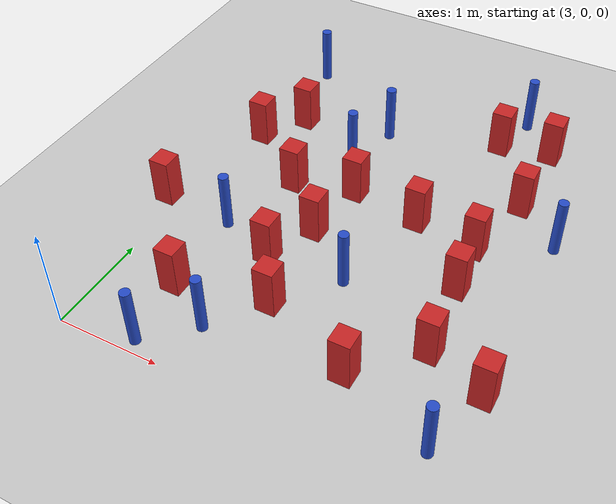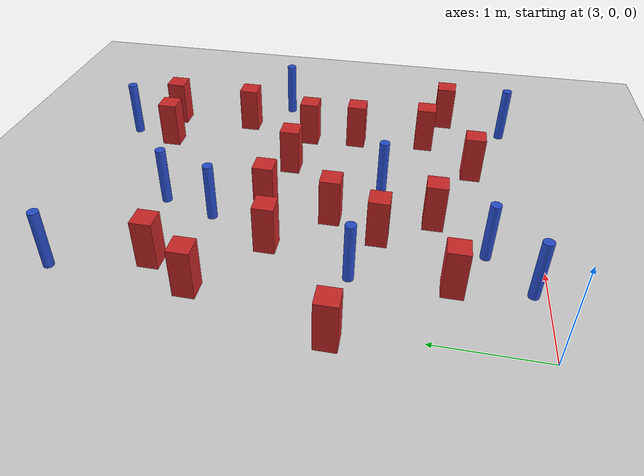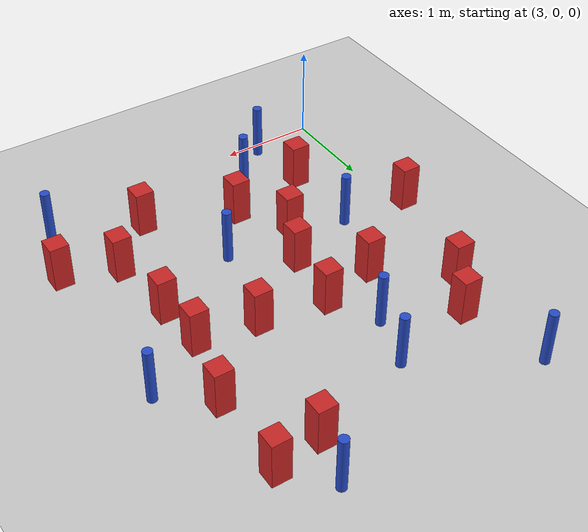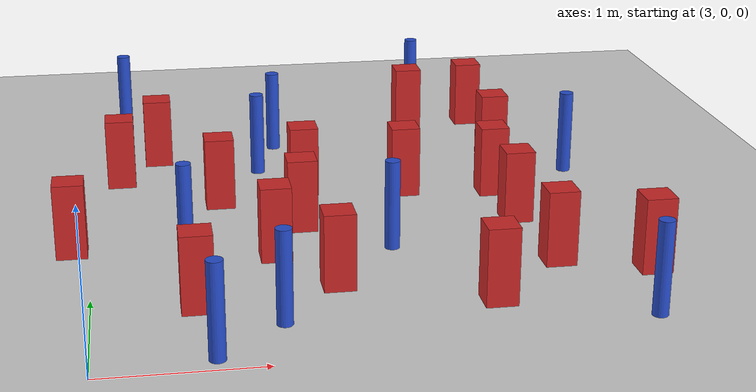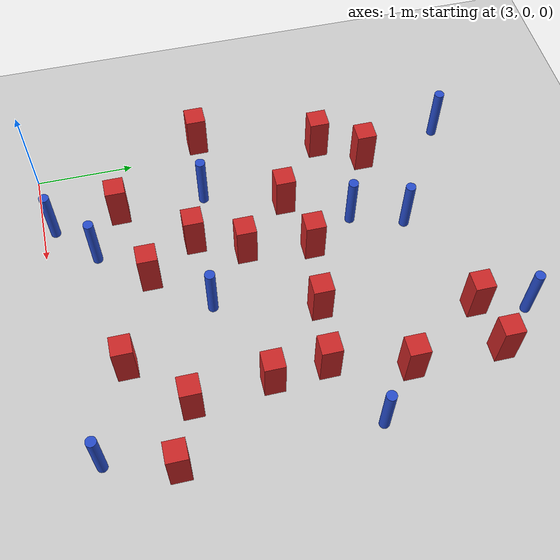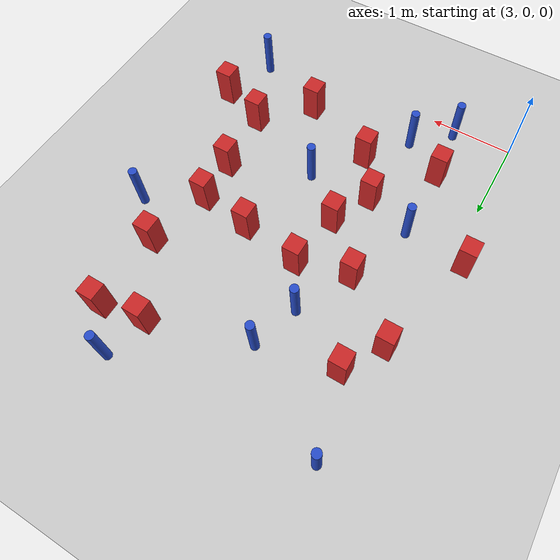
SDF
<sdf version="1.6">
 <world name="default">
  <model name="ground_plane">
   <static>1</static>
   <link name="link">
    <collision name="collision">
     <geometry><plane><normal>0 0 1</normal><size>100 100</size></plane></geometry>
     <surface><friction><ode><mu>100</mu><mu2>50</mu2></ode></friction></surface>
    </collision>
    <visual name="visual">
     <cast_shadows>0</cast_shadows>
     <geometry><plane><normal>0 0 1</normal><size>100 100</size></plane></geometry>
     <material>
      <ambient>1.0 1.0 1.0 1.0</ambient>
      <diffuse>0.8 0.8 0.8 1.0</diffuse>
      <specular>0.01 0.01 0.01 1.000000</specular>
     </material>
    </visual>
   </link>
  </model>
  <model name="pole_obstacle0">
   <static>true</static>
   <pose>3.60466851561 1.68815244617 -3.09024884793e-07 -7.19054271912e-07 -2.11315075122e-07 -1.93935509259e-07</pose>
   <link name="link">
    <pose>0 0 0.3 0 -0 0</pose>
    <inertial>
     <mass>1</mass>
     <inertia><ixx>0.145833</ixx><ixy>0</ixy><ixz>0</ixz><iyy>0.145833</iyy><iyz>0</iyz><izz>0.125</izz></inertia>
    </inertial>
    <collision name="collision">
     <geometry><cylinder><radius>0.05</radius><length>.6</length></cylinder></geometry>
    </collision>
    <visual name="visual">
     <geometry><cylinder><radius>0.05</radius><length>.6</length></cylinder></geometry>
     <material>
      <script><name>Gazebo/Blue</name><uri>file://media/materials/scripts/gazebo.material</uri></script>
     </material>
    </visual>
   </link>
  </model>
  <model name="square_post_obstacle3">
   <static>true</static>
   <pose>3.87906195297 2.48973368131 -4.36207812815e-07 3.75137919937e-06 9.77721102514e-07 2.47381364184e-05</pose>
   <link name="link">
    <pose>0 0 0.25 0 -0 0</pose>
    <inertial>
     <mass>100</mass>
     <inertia>
      <ixx>0.166667</ixx>
      <ixy>0</ixy>
      <ixz>0</ixz>
      <iyy>0.166667</iyy>
      <iyz>0</iyz>
      <izz>0.166667</izz>
     </inertia>
    </inertial>
    <collision name="collision"><geometry><box><size>.2 .2 .5</size></box></geometry></collision>
    <visual name="visual">
     <geometry><box><size>.2 .2 .5</size></box></geometry>
     <material>
      <script><name>Gazebo/Red</name><uri>file://media/materials/scripts/gazebo.material</uri></script>
     </material>
    </visual>
   </link>
  </model>
  <model name="square_post_obstacle4">
   <static>true</static>
   <pose>5.19409219351 2.53887665867 -4.36207812815e-07 3.75137919937e-06 9.77721102514e-07 2.47381364184e-05</pose>
   <link name="link">
    <pose>0 0 0.25 0 -0 0</pose>
    <inertial>
     <mass>100</mass>
     <inertia>
      <ixx>0.166667</ixx>
      <ixy>0</ixy>
      <ixz>0</ixz>
      <iyy>0.166667</iyy>
      <iyz>0</iyz>
      <izz>0.166667</izz>
     </inertia>
    </inertial>
    <collision name="collision"><geometry><box><size>.2 .2 .5</size></box></geometry></collision>
    <visual name="visual">
     <geometry><box><size>.2 .2 .5</size></box></geometry>
     <material>
      <script><name>Gazebo/Red</name><uri>file://media/materials/scripts/gazebo.material</uri></script>
     </material>
    </visual>
   </link>
  </model>
  <model name="square_post_obstacle12">
   <static>true</static>
   <pose>5.85844302051 1.91838656615 -4.36207812815e-07 3.75137919937e-06 9.77721102514e-07 2.47381364184e-05</pose>
   <link name="link">
    <pose>0 0 0.25 0 -0 0</pose>
    <inertial>
     <mass>100</mass>
     <inertia>
      <ixx>0.166667</ixx>
      <ixy>0</ixy>
      <ixz>0</ixz>
      <iyy>0.166667</iyy>
      <iyz>0</iyz>
      <izz>0.166667</izz>
     </inertia>
    </inertial>
    <collision name="collision"><geometry><box><size>.2 .2 .5</size></box></geometry></collision>
    <visual name="visual">
     <geometry><box><size>.2 .2 .5</size></box></geometry>
     <material>
      <script><name>Gazebo/Red</name><uri>file://media/materials/scripts/gazebo.material</uri></script>
     </material>
    </visual>
   </link>
  </model>
  <model name="pole_obstacle22">
   <static>true</static>
   <pose>5.62345927579 4.4928146941 -3.09024884793e-07 -7.19054271911e-07 -2.1131507516e-07 -1.93935509277e-07</pose>
   <link name="link">
    <pose>0 0 0.3 0 -0 0</pose>
    <inertial>
     <mass>1</mass>
     <inertia><ixx>0.145833</ixx><ixy>0</ixy><ixz>0</ixz><iyy>0.145833</iyy><iyz>0</iyz><izz>0.125</izz></inertia>
    </inertial>
    <collision name="collision">
     <geometry><cylinder><radius>0.05</radius><length>.6</length></cylinder></geometry>
    </collision>
    <visual name="visual">
     <geometry><cylinder><radius>0.05</radius><length>.6</length></cylinder></geometry>
     <material>
      <script><name>Gazebo/Blue</name><uri>file://media/materials/scripts/gazebo.material</uri></script>
     </material>
    </visual>
   </link>
  </model>
  <model name="pole_obstacle34">
   <static>true</static>
   <pose>4.11600173302 0.507920673641 -3.09024884793e-07 -7.19054271912e-07 -2.11315075121e-07 -1.93935509259e-07</pose>
   <link name="link">
    <pose>0 0 0.3 0 -0 0</pose>
    <inertial>
     <mass>1</mass>
     <inertia><ixx>0.145833</ixx><ixy>0</ixy><ixz>0</ixz><iyy>0.145833</iyy><iyz>0</iyz><izz>0.125</izz></inertia>
    </inertial>
    <collision name="collision">
     <geometry><cylinder><radius>0.05</radius><length>.6</length></cylinder></geometry>
    </collision>
    <visual name="visual">
     <geometry><cylinder><radius>0.05</radius><length>.6</length></cylinder></geometry>
     <material>
      <script><name>Gazebo/Blue</name><uri>file://media/materials/scripts/gazebo.material</uri></script>
     </material>
    </visual>
   </link>
  </model>
  <model name="pole_obstacle35">
   <static>true</static>
   <pose>6.30162977022 0.28714621884 -3.09024884793e-07 -7.19054271912e-07 -2.11315075135e-07 -1.93935509265e-07</pose>
   <link name="link">
    <pose>0 0 0.3 0 -0 0</pose>
    <inertial>
     <mass>1</mass>
     <inertia><ixx>0.145833</ixx><ixy>0</ixy><ixz>0</ixz><iyy>0.145833</iyy><iyz>0</iyz><izz>0.125</izz></inertia>
    </inertial>
    <collision name="collision">
     <geometry><cylinder><radius>0.05</radius><length>.6</length></cylinder></geometry>
    </collision>
    <visual name="visual">
     <geometry><cylinder><radius>0.05</radius><length>.6</length></cylinder></geometry>
     <material>
      <script><name>Gazebo/Blue</name><uri>file://media/materials/scripts/gazebo.material</uri></script>
     </material>
    </visual>
   </link>
  </model>
  <model name="square_post_obstacle43">
   <static>true</static>
   <pose>6.00257894294 4.09511672997 -4.36207812815e-07 3.75137919937e-06 9.77721102514e-07 2.47381364184e-05</pose>
   <link name="link">
    <pose>0 0 0.25 0 -0 0</pose>
    <inertial>
     <mass>100</mass>
     <inertia>
      <ixx>0.166667</ixx>
      <ixy>0</ixy>
      <ixz>0</ixz>
      <iyy>0.166667</iyy>
      <iyz>0</iyz>
      <izz>0.166667</izz>
     </inertia>
    </inertial>
    <collision name="collision"><geometry><box><size>.2 .2 .5</size></box></geometry></collision>
    <visual name="visual">
     <geometry><box><size>.2 .2 .5</size></box></geometry>
     <material>
      <script><name>Gazebo/Red</name><uri>file://media/materials/scripts/gazebo.material</uri></script>
     </material>
    </visual>
   </link>
  </model>
  <model name="square_post_obstacle63">
   <static>true</static>
   <pose>5.93387154902 1.15310117434 -4.36207812815e-07 3.75137919937e-06 9.77721102514e-07 2.47381364184e-05</pose>
   <link name="link">
    <pose>0 0 0.25 0 -0 0</pose>
    <inertial>
     <mass>100</mass>
     <inertia>
      <ixx>0.166667</ixx>
      <ixy>0</ixy>
      <ixz>0</ixz>
      <iyy>0.166667</iyy>
      <iyz>0</iyz>
      <izz>0.166667</izz>
     </inertia>
    </inertial>
    <collision name="collision"><geometry><box><size>.2 .2 .5</size></box></geometry></collision>
    <visual name="visual">
     <geometry><box><size>.2 .2 .5</size></box></geometry>
     <material>
      <script><name>Gazebo/Red</name><uri>file://media/materials/scripts/gazebo.material</uri></script>
     </material>
    </visual>
   </link>
  </model>
  <model name="pole_obstacle86">
   <static>true</static>
   <pose>6.46464674473 2.80618691276 -3.09024884793e-07 -7.19054271912e-07 -2.11315075144e-07 -1.93935509269e-07</pose>
   <link name="link">
    <pose>0 0 0.3 0 -0 0</pose>
    <inertial>
     <mass>1</mass>
     <inertia><ixx>0.145833</ixx><ixy>0</ixy><ixz>0</ixz><iyy>0.145833</iyy><iyz>0</iyz><izz>0.125</izz></inertia>
    </inertial>
    <collision name="collision">
     <geometry><cylinder><radius>0.05</radius><length>.6</length></cylinder></geometry>
    </collision>
    <visual name="visual">
     <geometry><cylinder><radius>0.05</radius><length>.6</length></cylinder></geometry>
     <material>
      <script><name>Gazebo/Blue</name><uri>file://media/materials/scripts/gazebo.material</uri></script>
     </material>
    </visual>
   </link>
  </model>
  <model name="square_post_obstacle74">
   <static>true</static>
   <pose>4.16488872355 1.49642930319 -4.36207812815e-07 3.75137919937e-06 9.77721102514e-07 2.47381364184e-05</pose>
   <link name="link">
    <pose>0 0 0.25 0 -0 0</pose>
    <inertial>
     <mass>100</mass>
     <inertia>
      <ixx>0.166667</ixx>
      <ixy>0</ixy>
      <ixz>0</ixz>
      <iyy>0.166667</iyy>
      <iyz>0</iyz>
      <izz>0.166667</izz>
     </inertia>
    </inertial>
    <collision name="collision"><geometry><box><size>.2 .2 .5</size></box></geometry></collision>
    <visual name="visual">
     <geometry><box><size>.2 .2 .5</size></box></geometry>
     <material>
      <script><name>Gazebo/Red</name><uri>file://media/materials/scripts/gazebo.material</uri></script>
     </material>
    </visual>
   </link>
  </model>
  <model name="square_post_obstacle75">
   <static>true</static>
   <pose>2.87497273468 1.75253294961 -4.36207812815e-07 3.75137919937e-06 9.77721102514e-07 2.47381364184e-05</pose>
   <link name="link">
    <pose>0 0 0.25 0 -0 0</pose>
    <inertial>
     <mass>100</mass>
     <inertia>
      <ixx>0.166667</ixx>
      <ixy>0</ixy>
      <ixz>0</ixz>
      <iyy>0.166667</iyy>
      <iyz>0</iyz>
      <izz>0.166667</izz>
     </inertia>
    </inertial>
    <collision name="collision"><geometry><box><size>.2 .2 .5</size></box></geometry></collision>
    <visual name="visual">
     <geometry><box><size>.2 .2 .5</size></box></geometry>
     <material>
      <script><name>Gazebo/Red</name><uri>file://media/materials/scripts/gazebo.material</uri></script>
     </material>
    </visual>
   </link>
  </model>
  <model name="square_post_obstacle89">
   <static>true</static>
   <pose>4.39092019486 1.97708388863 -4.36207812815e-07 3.75137919937e-06 9.77721102514e-07 2.47381364184e-05</pose>
   <link name="link">
    <pose>0 0 0.25 0 -0 0</pose>
    <inertial>
     <mass>100</mass>
     <inertia>
      <ixx>0.166667</ixx>
      <ixy>0</ixy>
      <ixz>0</ixz>
      <iyy>0.166667</iyy>
      <iyz>0</iyz>
      <izz>0.166667</izz>
     </inertia>
    </inertial>
    <collision name="collision"><geometry><box><size>.2 .2 .5</size></box></geometry></collision>
    <visual name="visual">
     <geometry><box><size>.2 .2 .5</size></box></geometry>
     <material>
      <script><name>Gazebo/Red</name><uri>file://media/materials/scripts/gazebo.material</uri></script>
     </material>
    </visual>
   </link>
  </model>
  <model name="square_post_obstacle90">
   <static>true</static>
   <pose>6.00355162635 3.20377724136 -4.36207812815e-07 3.75137919937e-06 9.77721102514e-07 2.47381364184e-05</pose>
   <link name="link">
    <pose>0 0 0.25 0 -0 0</pose>
    <inertial>
     <mass>100</mass>
     <inertia>
      <ixx>0.166667</ixx>
      <ixy>0</ixy>
      <ixz>0</ixz>
      <iyy>0.166667</iyy>
      <iyz>0</iyz>
      <izz>0.166667</izz>
     </inertia>
    </inertial>
    <collision name="collision"><geometry><box><size>.2 .2 .5</size></box></geometry></collision>
    <visual name="visual">
     <geometry><box><size>.2 .2 .5</size></box></geometry>
     <material>
      <script><name>Gazebo/Red</name><uri>file://media/materials/scripts/gazebo.material</uri></script>
     </material>
    </visual>
   </link>
  </model>
  <model name="pole_obstacle114">
   <static>true</static>
   <pose>3.24895683945 4.33402686463 -3.09024884793e-07 -7.19054271912e-07 -2.11315075134e-07 -1.93935509266e-07</pose>
   <link name="link">
    <pose>0 0 0.3 0 -0 0</pose>
    <inertial>
     <mass>1</mass>
     <inertia><ixx>0.145833</ixx><ixy>0</ixy><ixz>0</ixz><iyy>0.145833</iyy><iyz>0</iyz><izz>0.125</izz></inertia>
    </inertial>
    <collision name="collision">
     <geometry><cylinder><radius>0.05</radius><length>.6</length></cylinder></geometry>
    </collision>
    <visual name="visual">
     <geometry><cylinder><radius>0.05</radius><length>.6</length></cylinder></geometry>
     <material>
      <script><name>Gazebo/Blue</name><uri>file://media/materials/scripts/gazebo.material</uri></script>
     </material>
    </visual>
   </link>
  </model>
  <model name="pole_obstacle117">
   <static>true</static>
   <pose>4.93155066983 1.53489315904 -3.09024884793e-07 -7.19054271912e-07 -2.11315075124e-07 -1.93935509261e-07</pose>
   <link name="link">
    <pose>0 0 0.3 0 -0 0</pose>
    <inertial>
     <mass>1</mass>
     <inertia><ixx>0.145833</ixx><ixy>0</ixy><ixz>0</ixz><iyy>0.145833</iyy><iyz>0</iyz><izz>0.125</izz></inertia>
    </inertial>
    <collision name="collision">
     <geometry><cylinder><radius>0.05</radius><length>.6</length></cylinder></geometry>
    </collision>
    <visual name="visual">
     <geometry><cylinder><radius>0.05</radius><length>.6</length></cylinder></geometry>
     <material>
      <script><name>Gazebo/Blue</name><uri>file://media/materials/scripts/gazebo.material</uri></script>
     </material>
    </visual>
   </link>
  </model>
  <model name="square_post_obstacle120">
   <static>true</static>
   <pose>3.48128010855 3.45337620537 -4.36207812815e-07 3.75137919937e-06 9.77721102514e-07 2.47381364184e-05</pose>
   <link name="link">
    <pose>0 0 0.25 0 -0 0</pose>
    <inertial>
     <mass>100</mass>
     <inertia>
      <ixx>0.166667</ixx>
      <ixy>0</ixy>
      <ixz>0</ixz>
      <iyy>0.166667</iyy>
      <iyz>0</iyz>
      <izz>0.166667</izz>
     </inertia>
    </inertial>
    <collision name="collision"><geometry><box><size>.2 .2 .5</size></box></geometry></collision>
    <visual name="visual">
     <geometry><box><size>.2 .2 .5</size></box></geometry>
     <material>
      <script><name>Gazebo/Red</name><uri>file://media/materials/scripts/gazebo.material</uri></script>
     </material>
    </visual>
   </link>
  </model>
  <model name="square_post_obstacle123">
   <static>true</static>
   <pose>3.62911964179 0.800626726803 -4.36207812815e-07 3.75137919937e-06 9.77721102514e-07 2.47381364184e-05</pose>
   <link name="link">
    <pose>0 0 0.25 0 -0 0</pose>
    <inertial>
     <mass>100</mass>
     <inertia>
      <ixx>0.166667</ixx>
      <ixy>0</ixy>
      <ixz>0</ixz>
      <iyy>0.166667</iyy>
      <iyz>0</iyz>
      <izz>0.166667</izz>
     </inertia>
    </inertial>
    <collision name="collision"><geometry><box><size>.2 .2 .5</size></box></geometry></collision>
    <visual name="visual">
     <geometry><box><size>.2 .2 .5</size></box></geometry>
     <material>
      <script><name>Gazebo/Red</name><uri>file://media/materials/scripts/gazebo.material</uri></script>
     </material>
    </visual>
   </link>
  </model>
  <model name="square_post_obstacle125">
   <static>true</static>
   <pose>3.20229484599 3.01561032146 -4.36207812815e-07 3.75137919937e-06 9.77721102514e-07 2.47381364184e-05</pose>
   <link name="link">
    <pose>0 0 0.25 0 -0 0</pose>
    <inertial>
     <mass>100</mass>
     <inertia>
      <ixx>0.166667</ixx>
      <ixy>0</ixy>
      <ixz>0</ixz>
      <iyy>0.166667</iyy>
      <iyz>0</iyz>
      <izz>0.166667</izz>
     </inertia>
    </inertial>
    <collision name="collision"><geometry><box><size>.2 .2 .5</size></box></geometry></collision>
    <visual name="visual">
     <geometry><box><size>.2 .2 .5</size></box></geometry>
     <material>
      <script><name>Gazebo/Red</name><uri>file://media/materials/scripts/gazebo.material</uri></script>
     </material>
    </visual>
   </link>
  </model>
  <model name="square_post_obstacle147">
   <static>true</static>
   <pose>5.81716630669 2.44873523459 -4.36207812815e-07 3.75137919937e-06 9.77721102514e-07 2.47381364184e-05</pose>
   <link name="link">
    <pose>0 0 0.25 0 -0 0</pose>
    <inertial>
     <mass>100</mass>
     <inertia>
      <ixx>0.166667</ixx>
      <ixy>0</ixy>
      <ixz>0</ixz>
      <iyy>0.166667</iyy>
      <iyz>0</iyz>
      <izz>0.166667</izz>
     </inertia>
    </inertial>
    <collision name="collision"><geometry><box><size>.2 .2 .5</size></box></geometry></collision>
    <visual name="visual">
     <geometry><box><size>.2 .2 .5</size></box></geometry>
     <material>
      <script><name>Gazebo/Red</name><uri>file://media/materials/scripts/gazebo.material</uri></script>
     </material>
    </visual>
   </link>
  </model>
  <model name="pole_obstacle155">
   <static>true</static>
   <pose>4.37328675213 3.65526643042 -3.09024884793e-07 -7.19054271912e-07 -2.11315075144e-07 -1.93935509269e-07</pose>
   <link name="link">
    <pose>0 0 0.3 0 -0 0</pose>
    <inertial>
     <mass>1</mass>
     <inertia><ixx>0.145833</ixx><ixy>0</ixy><ixz>0</ixz><iyy>0.145833</iyy><iyz>0</iyz><izz>0.125</izz></inertia>
    </inertial>
    <collision name="collision">
     <geometry><cylinder><radius>0.05</radius><length>.6</length></cylinder></geometry>
    </collision>
    <visual name="visual">
     <geometry><cylinder><radius>0.05</radius><length>.6</length></cylinder></geometry>
     <material>
      <script><name>Gazebo/Blue</name><uri>file://media/materials/scripts/gazebo.material</uri></script>
     </material>
    </visual>
   </link>
  </model>
  <model name="pole_obstacle169">
   <static>true</static>
   <pose>3.70067098473 0.122814528541 -3.09024884793e-07 -7.19054271912e-07 -2.11315075129e-07 -1.93935509263e-07</pose>
   <link name="link">
    <pose>0 0 0.3 0 -0 0</pose>
    <inertial>
     <mass>1</mass>
     <inertia><ixx>0.145833</ixx><ixy>0</ixy><ixz>0</ixz><iyy>0.145833</iyy><iyz>0</iyz><izz>0.125</izz></inertia>
    </inertial>
    <collision name="collision">
     <geometry><cylinder><radius>0.05</radius><length>.6</length></cylinder></geometry>
    </collision>
    <visual name="visual">
     <geometry><cylinder><radius>0.05</radius><length>.6</length></cylinder></geometry>
     <material>
      <script><name>Gazebo/Blue</name><uri>file://media/materials/scripts/gazebo.material</uri></script>
     </material>
    </visual>
   </link>
  </model>
  <model name="square_post_obstacle178">
   <static>true</static>
   <pose>6.49177768688 0.943278779598 -4.36207812815e-07 3.75137919937e-06 9.77721102514e-07 2.47381364184e-05</pose>
   <link name="link">
    <pose>0 0 0.25 0 -0 0</pose>
    <inertial>
     <mass>100</mass>
     <inertia>
      <ixx>0.166667</ixx>
      <ixy>0</ixy>
      <ixz>0</ixz>
      <iyy>0.166667</iyy>
      <iyz>0</iyz>
      <izz>0.166667</izz>
     </inertia>
    </inertial>
    <collision name="collision"><geometry><box><size>.2 .2 .5</size></box></geometry></collision>
    <visual name="visual">
     <geometry><box><size>.2 .2 .5</size></box></geometry>
     <material>
      <script><name>Gazebo/Red</name><uri>file://media/materials/scripts/gazebo.material</uri></script>
     </material>
    </visual>
   </link>
  </model>
  <model name="square_post_obstacle185">
   <static>true</static>
   <pose>4.49709539497 0.993040703194 -4.36207812815e-07 3.75137919937e-06 9.77721102514e-07 2.47381364184e-05</pose>
   <link name="link">
    <pose>0 0 0.25 0 -0 0</pose>
    <inertial>
     <mass>100</mass>
     <inertia>
      <ixx>0.166667</ixx>
      <ixy>0</ixy>
      <ixz>0</ixz>
      <iyy>0.166667</iyy>
      <iyz>0</iyz>
      <izz>0.166667</izz>
     </inertia>
    </inertial>
    <collision name="collision"><geometry><box><size>.2 .2 .5</size></box></geometry></collision>
    <visual name="visual">
     <geometry><box><size>.2 .2 .5</size></box></geometry>
     <material>
      <script><name>Gazebo/Red</name><uri>file://media/materials/scripts/gazebo.material</uri></script>
     </material>
    </visual>
   </link>
  </model>
  <model name="square_post_obstacle193">
   <static>true</static>
   <pose>5.49332477675 4.00608089999 -4.36207812815e-07 3.75137919937e-06 9.77721102514e-07 2.47381364184e-05</pose>
   <link name="link">
    <pose>0 0 0.25 0 -0 0</pose>
    <inertial>
     <mass>100</mass>
     <inertia>
      <ixx>0.166667</ixx>
      <ixy>0</ixy>
      <ixz>0</ixz>
      <iyy>0.166667</iyy>
      <iyz>0</iyz>
      <izz>0.166667</izz>
     </inertia>
    </inertial>
    <collision name="collision"><geometry><box><size>.2 .2 .5</size></box></geometry></collision>
    <visual name="visual">
     <geometry><box><size>.2 .2 .5</size></box></geometry>
     <material>
      <script><name>Gazebo/Red</name><uri>file://media/materials/scripts/gazebo.material</uri></script>
     </material>
    </visual>
   </link>
  </model>
  <model name="square_post_obstacle203">
   <static>true</static>
   <pose>5.41511135756 0.629608630126 -4.36207812815e-07 3.75137919937e-06 9.77721102514e-07 2.47381364184e-05</pose>
   <link name="link">
    <pose>0 0 0.25 0 -0 0</pose>
    <inertial>
     <mass>100</mass>
     <inertia>
      <ixx>0.166667</ixx>
      <ixy>0</ixy>
      <ixz>0</ixz>
      <iyy>0.166667</iyy>
      <iyz>0</iyz>
      <izz>0.166667</izz>
     </inertia>
    </inertial>
    <collision name="collision"><geometry><box><size>.2 .2 .5</size></box></geometry></collision>
    <visual name="visual">
     <geometry><box><size>.2 .2 .5</size></box></geometry>
     <material>
      <script><name>Gazebo/Red</name><uri>file://media/materials/scripts/gazebo.material</uri></script>
     </material>
    </visual>
   </link>
  </model>
  <model name="pole_obstacle198">
   <static>true</static>
   <pose>4.20276915274 3.11867886197 -3.09024884793e-07 -7.19054271912e-07 -2.11315075144e-07 -1.93935509269e-07</pose>
   <link name="link">
    <pose>0 0 0.3 0 -0 0</pose>
    <inertial>
     <mass>1</mass>
     <inertia><ixx>0.145833</ixx><ixy>0</ixy><ixz>0</ixz><iyy>0.145833</iyy><iyz>0</iyz><izz>0.125</izz></inertia>
    </inertial>
    <collision name="collision">
     <geometry><cylinder><radius>0.05</radius><length>.6</length></cylinder></geometry>
    </collision>
    <visual name="visual">
     <geometry><cylinder><radius>0.05</radius><length>.6</length></cylinder></geometry>
     <material>
      <script><name>Gazebo/Blue</name><uri>file://media/materials/scripts/gazebo.material</uri></script>
     </material>
    </visual>
   </link>
  </model>
  <model name="square_post_obstacle212">
   <static>true</static>
   <pose>4.48508247067 2.64726805029 -4.36207812815e-07 3.75137919937e-06 9.77721102514e-07 2.47381364184e-05</pose>
   <link name="link">
    <pose>0 0 0.25 0 -0 0</pose>
    <inertial>
     <mass>100</mass>
     <inertia>
      <ixx>0.166667</ixx>
      <ixy>0</ixy>
      <ixz>0</ixz>
      <iyy>0.166667</iyy>
      <iyz>0</iyz>
      <izz>0.166667</izz>
     </inertia>
    </inertial>
    <collision name="collision"><geometry><box><size>.2 .2 .5</size></box></geometry></collision>
    <visual name="visual">
     <geometry><box><size>.2 .2 .5</size></box></geometry>
     <material>
      <script><name>Gazebo/Red</name><uri>file://media/materials/scripts/gazebo.material</uri></script>
     </material>
    </visual>
   </link>
  </model>
 </world>
</sdf>
